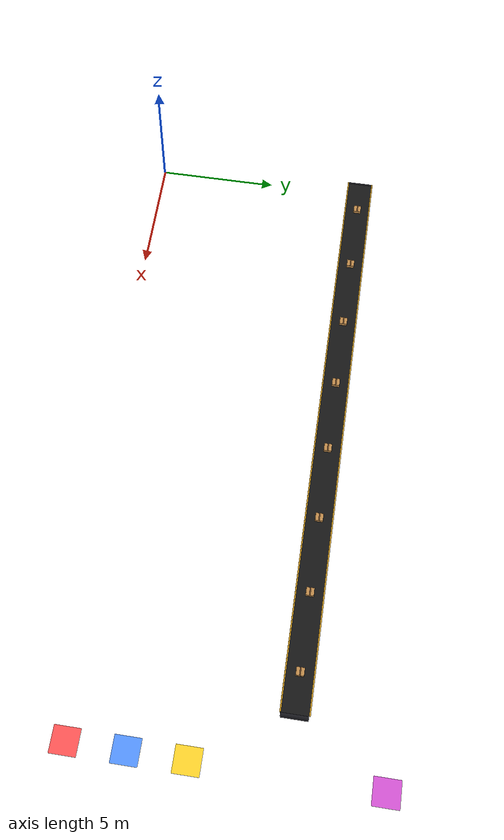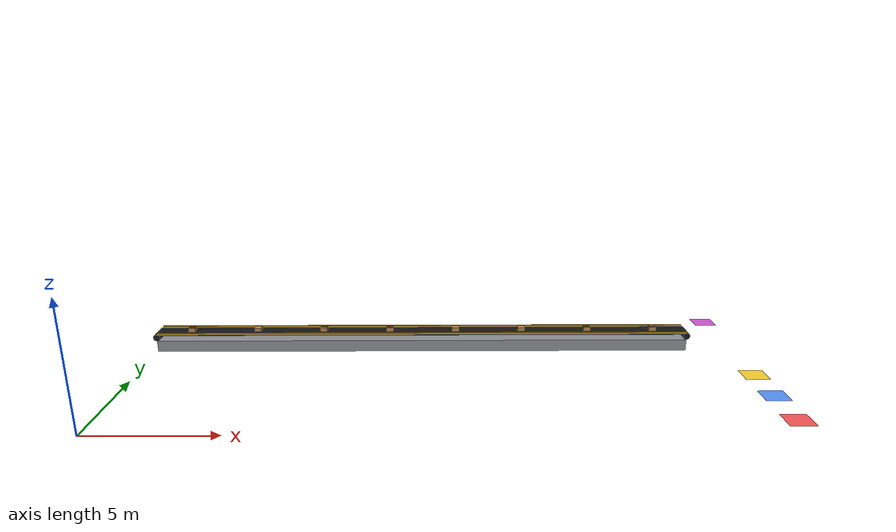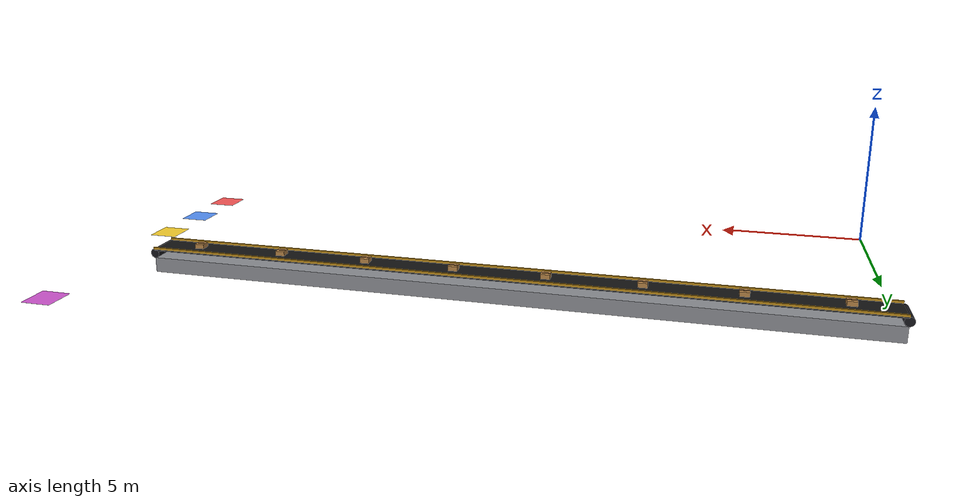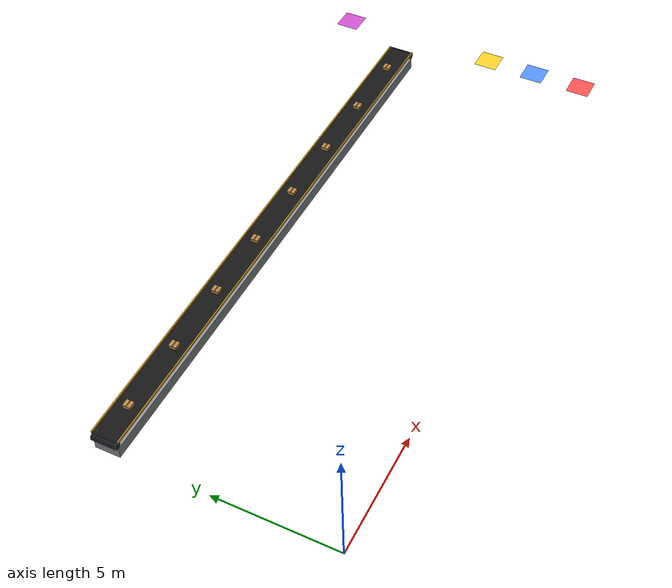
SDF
<sdf version="1.7">
 <world name="warehouse_layout2">
  <model name="ground_plane">
   <static>true</static>
   <link name="link">
    <collision name="collision">
     <geometry><plane><normal>0.0 0.0 1</normal><size>1 1</size></plane></geometry>
    </collision>
   </link>
  </model>
  <model name="inbound_belt_frame">
   <static>true</static>
   <pose>11.8 9.0 0.25 0 0 0.0</pose>
   <link name="link">
    <collision name="collision"><geometry><box><size>23.6 1.0 0.5</size></box></geometry></collision>
    <visual name="visual_base">
     <geometry><box><size>23.6 1.0 0.5</size></box></geometry>
     <material>
      <ambient>0.55 0.56 0.58 1</ambient>
      <diffuse>0.55 0.56 0.58 1</diffuse>
      <specular>0.6 0.6 0.6 1</specular>
     </material>
    </visual>
   </link>
  </model>
  <model name="inbound_belt_deck">
   <static>true</static>
   <pose>11.8 9.0 0.775 0 0 0.0</pose>
   <link name="link">
    <collision name="collision">
     <geometry><box><size>23.6 1.0 0.05</size></box></geometry>
     <surface><friction><ode><mu>1.0</mu><mu2>1.0</mu2></ode></friction></surface>
    </collision>
    <visual name="visual">
     <geometry><box><size>23.6 1.0 0.05</size></box></geometry>
     <material><ambient>0.08 0.08 0.08 1</ambient><diffuse>0.08 0.08 0.08 1</diffuse></material>
    </visual>
   </link>
  </model>
  <model name="inbound_belt_rail_left">
   <static>true</static>
   <pose>11.8 9.525 0.8400000000000001 0 0 0.0</pose>
   <link name="link">
    <visual name="visual">
     <geometry><box><size>23.6 0.05 0.08</size></box></geometry>
     <material><ambient>0.75 0.55 0.1 1</ambient><diffuse>0.75 0.55 0.1 1</diffuse></material>
    </visual>
   </link>
  </model>
  <model name="inbound_belt_rail_right">
   <static>true</static>
   <pose>11.8 8.475 0.8400000000000001 0 0 0.0</pose>
   <link name="link">
    <visual name="visual">
     <geometry><box><size>23.6 0.05 0.08</size></box></geometry>
     <material><ambient>0.75 0.55 0.1 1</ambient><diffuse>0.75 0.55 0.1 1</diffuse></material>
    </visual>
   </link>
  </model>
  <model name="inbound_belt_roller_start">
   <pose>0.0 9.0 0.65 1.5708 0 0</pose>
   <link name="roller_link">
    <inertial>
     <mass>0.5</mass>
     <inertia><ixx>0.01</ixx><iyy>0.01</iyy><izz>0.01</izz><ixy>0</ixy><ixz>0</ixz><iyz>0</iyz></inertia>
    </inertial>
    <visual name="visual">
     <geometry><cylinder><radius>0.15</radius><length>1.0</length></cylinder></geometry>
     <material>
      <ambient>0.1 0.1 0.12 1</ambient>
      <diffuse>0.1 0.1 0.12 1</diffuse>
      <specular>0.4 0.4 0.4 1</specular>
     </material>
    </visual>
    <collision name="collision">
     <geometry><cylinder><radius>0.15</radius><length>1.0</length></cylinder></geometry>
    </collision>
   </link>
   <joint name="spin_joint" type="revolute">
    <parent>world</parent>
    <child>roller_link</child>
    <axis><xyz>0 0 1</xyz><limit><lower>-1e16</lower><upper>1e16</upper></limit></axis>
   </joint>
   <plugin filename="libignition-gazebo-joint-controller-system.so" name="ignition::gazebo::systems::JointController">
    <joint_name>spin_joint</joint_name>
    <initial_velocity>6.0</initial_velocity>
   </plugin>
  </model>
  <model name="inbound_belt_roller_end">
   <pose>23.6 9.0 0.65 1.5708 0 0</pose>
   <link name="roller_link">
    <inertial>
     <mass>0.5</mass>
     <inertia><ixx>0.01</ixx><iyy>0.01</iyy><izz>0.01</izz><ixy>0</ixy><ixz>0</ixz><iyz>0</iyz></inertia>
    </inertial>
    <visual name="visual">
     <geometry><cylinder><radius>0.15</radius><length>1.0</length></cylinder></geometry>
     <material>
      <ambient>0.1 0.1 0.12 1</ambient>
      <diffuse>0.1 0.1 0.12 1</diffuse>
      <specular>0.4 0.4 0.4 1</specular>
     </material>
    </visual>
    <collision name="collision">
     <geometry><cylinder><radius>0.15</radius><length>1.0</length></cylinder></geometry>
    </collision>
   </link>
   <joint name="spin_joint" type="revolute">
    <parent>world</parent>
    <child>roller_link</child>
    <axis><xyz>0 0 1</xyz><limit><lower>-1e16</lower><upper>1e16</upper></limit></axis>
   </joint>
   <plugin filename="libignition-gazebo-joint-controller-system.so" name="ignition::gazebo::systems::JointController">
    <joint_name>spin_joint</joint_name>
    <initial_velocity>6.0</initial_velocity>
   </plugin>
  </model>
  <model name="inbound_belt_pkg0">
   <pose>1.475 9.0 0.895 0 0 0.0</pose>
   <link name="box_link">
    <inertial>
     <mass>0.2</mass>
     <inertia><ixx>0.001</ixx><iyy>0.001</iyy><izz>0.001</izz><ixy>0</ixy><ixz>0</ixz><iyz>0</iyz></inertia>
    </inertial>
    <visual name="visual_body">
     <geometry><box><size>0.3 0.3 0.15</size></box></geometry>
     <material><ambient>0.72 0.52 0.28 1</ambient><diffuse>0.72 0.52 0.28 1</diffuse></material>
    </visual>
    <visual name="visual_strap">
     <pose>0 0 0.076 0 0 0</pose>
     <geometry><box><size>0.3 0.045 0.002</size></box></geometry>
     <material><ambient>0.35 0.22 0.1 1</ambient><diffuse>0.35 0.22 0.1 1</diffuse></material>
    </visual>
    <collision name="collision">
     <geometry><box><size>0.3 0.3 0.15</size></box></geometry>
     <surface><friction><ode><mu>1.2</mu><mu2>1.2</mu2></ode></friction></surface>
    </collision>
   </link>
   <plugin filename="libignition-gazebo-velocity-control-system.so" name="ignition::gazebo::systems::VelocityControl">
    <link_name>box_link</link_name>
   </plugin>
  </model>
  <model name="inbound_belt_pkg1">
   <pose>4.425000000000001 9.0 0.895 0 0 0.0</pose>
   <link name="box_link">
    <inertial>
     <mass>0.2</mass>
     <inertia><ixx>0.001</ixx><iyy>0.001</iyy><izz>0.001</izz><ixy>0</ixy><ixz>0</ixz><iyz>0</iyz></inertia>
    </inertial>
    <visual name="visual_body">
     <geometry><box><size>0.3 0.3 0.15</size></box></geometry>
     <material><ambient>0.72 0.52 0.28 1</ambient><diffuse>0.72 0.52 0.28 1</diffuse></material>
    </visual>
    <visual name="visual_strap">
     <pose>0 0 0.076 0 0 0</pose>
     <geometry><box><size>0.3 0.045 0.002</size></box></geometry>
     <material><ambient>0.35 0.22 0.1 1</ambient><diffuse>0.35 0.22 0.1 1</diffuse></material>
    </visual>
    <collision name="collision">
     <geometry><box><size>0.3 0.3 0.15</size></box></geometry>
     <surface><friction><ode><mu>1.2</mu><mu2>1.2</mu2></ode></friction></surface>
    </collision>
   </link>
   <plugin filename="libignition-gazebo-velocity-control-system.so" name="ignition::gazebo::systems::VelocityControl">
    <link_name>box_link</link_name>
   </plugin>
  </model>
  <model name="inbound_belt_pkg2">
   <pose>7.375 9.0 0.895 0 0 0.0</pose>
   <link name="box_link">
    <inertial>
     <mass>0.2</mass>
     <inertia><ixx>0.001</ixx><iyy>0.001</iyy><izz>0.001</izz><ixy>0</ixy><ixz>0</ixz><iyz>0</iyz></inertia>
    </inertial>
    <visual name="visual_body">
     <geometry><box><size>0.3 0.3 0.15</size></box></geometry>
     <material><ambient>0.72 0.52 0.28 1</ambient><diffuse>0.72 0.52 0.28 1</diffuse></material>
    </visual>
    <visual name="visual_strap">
     <pose>0 0 0.076 0 0 0</pose>
     <geometry><box><size>0.3 0.045 0.002</size></box></geometry>
     <material><ambient>0.35 0.22 0.1 1</ambient><diffuse>0.35 0.22 0.1 1</diffuse></material>
    </visual>
    <collision name="collision">
     <geometry><box><size>0.3 0.3 0.15</size></box></geometry>
     <surface><friction><ode><mu>1.2</mu><mu2>1.2</mu2></ode></friction></surface>
    </collision>
   </link>
   <plugin filename="libignition-gazebo-velocity-control-system.so" name="ignition::gazebo::systems::VelocityControl">
    <link_name>box_link</link_name>
   </plugin>
  </model>
  <model name="inbound_belt_pkg3">
   <pose>10.325000000000001 9.0 0.895 0 0 0.0</pose>
   <link name="box_link">
    <inertial>
     <mass>0.2</mass>
     <inertia><ixx>0.001</ixx><iyy>0.001</iyy><izz>0.001</izz><ixy>0</ixy><ixz>0</ixz><iyz>0</iyz></inertia>
    </inertial>
    <visual name="visual_body">
     <geometry><box><size>0.3 0.3 0.15</size></box></geometry>
     <material><ambient>0.72 0.52 0.28 1</ambient><diffuse>0.72 0.52 0.28 1</diffuse></material>
    </visual>
    <visual name="visual_strap">
     <pose>0 0 0.076 0 0 0</pose>
     <geometry><box><size>0.3 0.045 0.002</size></box></geometry>
     <material><ambient>0.35 0.22 0.1 1</ambient><diffuse>0.35 0.22 0.1 1</diffuse></material>
    </visual>
    <collision name="collision">
     <geometry><box><size>0.3 0.3 0.15</size></box></geometry>
     <surface><friction><ode><mu>1.2</mu><mu2>1.2</mu2></ode></friction></surface>
    </collision>
   </link>
   <plugin filename="libignition-gazebo-velocity-control-system.so" name="ignition::gazebo::systems::VelocityControl">
    <link_name>box_link</link_name>
   </plugin>
  </model>
  <model name="inbound_belt_pkg4">
   <pose>13.275 9.0 0.895 0 0 0.0</pose>
   <link name="box_link">
    <inertial>
     <mass>0.2</mass>
     <inertia><ixx>0.001</ixx><iyy>0.001</iyy><izz>0.001</izz><ixy>0</ixy><ixz>0</ixz><iyz>0</iyz></inertia>
    </inertial>
    <visual name="visual_body">
     <geometry><box><size>0.3 0.3 0.15</size></box></geometry>
     <material><ambient>0.72 0.52 0.28 1</ambient><diffuse>0.72 0.52 0.28 1</diffuse></material>
    </visual>
    <visual name="visual_strap">
     <pose>0 0 0.076 0 0 0</pose>
     <geometry><box><size>0.3 0.045 0.002</size></box></geometry>
     <material><ambient>0.35 0.22 0.1 1</ambient><diffuse>0.35 0.22 0.1 1</diffuse></material>
    </visual>
    <collision name="collision">
     <geometry><box><size>0.3 0.3 0.15</size></box></geometry>
     <surface><friction><ode><mu>1.2</mu><mu2>1.2</mu2></ode></friction></surface>
    </collision>
   </link>
   <plugin filename="libignition-gazebo-velocity-control-system.so" name="ignition::gazebo::systems::VelocityControl">
    <link_name>box_link</link_name>
   </plugin>
  </model>
  <model name="inbound_belt_pkg5">
   <pose>16.225 9.0 0.895 0 0 0.0</pose>
   <link name="box_link">
    <inertial>
     <mass>0.2</mass>
     <inertia><ixx>0.001</ixx><iyy>0.001</iyy><izz>0.001</izz><ixy>0</ixy><ixz>0</ixz><iyz>0</iyz></inertia>
    </inertial>
    <visual name="visual_body">
     <geometry><box><size>0.3 0.3 0.15</size></box></geometry>
     <material><ambient>0.72 0.52 0.28 1</ambient><diffuse>0.72 0.52 0.28 1</diffuse></material>
    </visual>
    <visual name="visual_strap">
     <pose>0 0 0.076 0 0 0</pose>
     <geometry><box><size>0.3 0.045 0.002</size></box></geometry>
     <material><ambient>0.35 0.22 0.1 1</ambient><diffuse>0.35 0.22 0.1 1</diffuse></material>
    </visual>
    <collision name="collision">
     <geometry><box><size>0.3 0.3 0.15</size></box></geometry>
     <surface><friction><ode><mu>1.2</mu><mu2>1.2</mu2></ode></friction></surface>
    </collision>
   </link>
   <plugin filename="libignition-gazebo-velocity-control-system.so" name="ignition::gazebo::systems::VelocityControl">
    <link_name>box_link</link_name>
   </plugin>
  </model>
  <model name="inbound_belt_pkg6">
   <pose>19.175 9.0 0.895 0 0 0.0</pose>
   <link name="box_link">
    <inertial>
     <mass>0.2</mass>
     <inertia><ixx>0.001</ixx><iyy>0.001</iyy><izz>0.001</izz><ixy>0</ixy><ixz>0</ixz><iyz>0</iyz></inertia>
    </inertial>
    <visual name="visual_body">
     <geometry><box><size>0.3 0.3 0.15</size></box></geometry>
     <material><ambient>0.72 0.52 0.28 1</ambient><diffuse>0.72 0.52 0.28 1</diffuse></material>
    </visual>
    <visual name="visual_strap">
     <pose>0 0 0.076 0 0 0</pose>
     <geometry><box><size>0.3 0.045 0.002</size></box></geometry>
     <material><ambient>0.35 0.22 0.1 1</ambient><diffuse>0.35 0.22 0.1 1</diffuse></material>
    </visual>
    <collision name="collision">
     <geometry><box><size>0.3 0.3 0.15</size></box></geometry>
     <surface><friction><ode><mu>1.2</mu><mu2>1.2</mu2></ode></friction></surface>
    </collision>
   </link>
   <plugin filename="libignition-gazebo-velocity-control-system.so" name="ignition::gazebo::systems::VelocityControl">
    <link_name>box_link</link_name>
   </plugin>
  </model>
  <model name="inbound_belt_pkg7">
   <pose>22.125 9.0 0.895 0 0 0.0</pose>
   <link name="box_link">
    <inertial>
     <mass>0.2</mass>
     <inertia><ixx>0.001</ixx><iyy>0.001</iyy><izz>0.001</izz><ixy>0</ixy><ixz>0</ixz><iyz>0</iyz></inertia>
    </inertial>
    <visual name="visual_body">
     <geometry><box><size>0.3 0.3 0.15</size></box></geometry>
     <material><ambient>0.72 0.52 0.28 1</ambient><diffuse>0.72 0.52 0.28 1</diffuse></material>
    </visual>
    <visual name="visual_strap">
     <pose>0 0 0.076 0 0 0</pose>
     <geometry><box><size>0.3 0.045 0.002</size></box></geometry>
     <material><ambient>0.35 0.22 0.1 1</ambient><diffuse>0.35 0.22 0.1 1</diffuse></material>
    </visual>
    <collision name="collision">
     <geometry><box><size>0.3 0.3 0.15</size></box></geometry>
     <surface><friction><ode><mu>1.2</mu><mu2>1.2</mu2></ode></friction></surface>
    </collision>
   </link>
   <plugin filename="libignition-gazebo-velocity-control-system.so" name="ignition::gazebo::systems::VelocityControl">
    <link_name>box_link</link_name>
   </plugin>
  </model>
  <model name="goal_zone_robot1">
   <static>true</static>
   <pose>25.6 1.1 0.005 0 0 0</pose>
   <link name="link">
    <visual name="visual">
     <geometry><box><size>1.0 1.0 0.005</size></box></geometry>
     <material>
      <ambient>1.0 0.2 0.2 0.8</ambient>
      <diffuse>1.0 0.2 0.2 0.8</diffuse>
      <emissive>0.3 0.06 0.06 1</emissive>
     </material>
    </visual>
   </link>
  </model>
  <model name="goal_zone_robot2">
   <static>true</static>
   <pose>25.6 3.3000000000000003 0.005 0 0 0</pose>
   <link name="link">
    <visual name="visual">
     <geometry><box><size>1.0 1.0 0.005</size></box></geometry>
     <material>
      <ambient>0.2 0.5 1.0 0.8</ambient>
      <diffuse>0.2 0.5 1.0 0.8</diffuse>
      <emissive>0.06 0.15 0.3 1</emissive>
     </material>
    </visual>
   </link>
  </model>
  <model name="goal_zone_robot3">
   <static>true</static>
   <pose>25.6 5.5 0.005 0 0 0</pose>
   <link name="link">
    <visual name="visual">
     <geometry><box><size>1.0 1.0 0.005</size></box></geometry>
     <material>
      <ambient>1.0 0.8 0.0 0.8</ambient>
      <diffuse>1.0 0.8 0.0 0.8</diffuse>
      <emissive>0.3 0.24 0.0 1</emissive>
     </material>
    </visual>
   </link>
  </model>
  <model name="goal_zone_robot5">
   <static>true</static>
   <pose>25.6 12.5 0.005 0 0 0</pose>
   <link name="link">
    <visual name="visual">
     <geometry><box><size>1.0 1.0 0.005</size></box></geometry>
     <material>
      <ambient>0.8 0.2 0.8 0.8</ambient>
      <diffuse>0.8 0.2 0.8 0.8</diffuse>
      <emissive>0.24 0.06 0.24 1</emissive>
     </material>
    </visual>
   </link>
  </model>
 </world>
</sdf>
